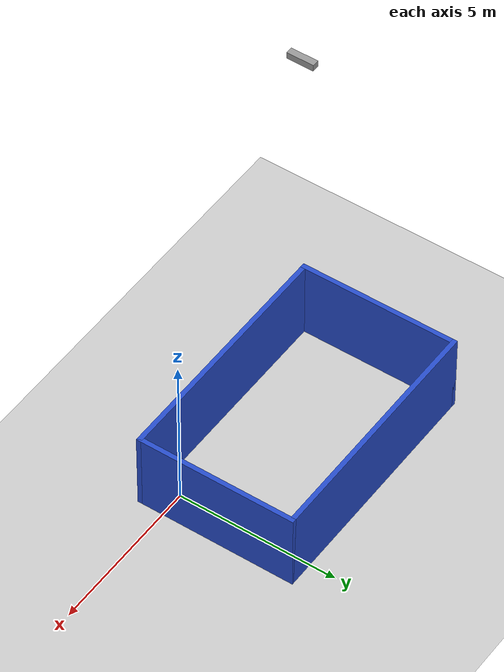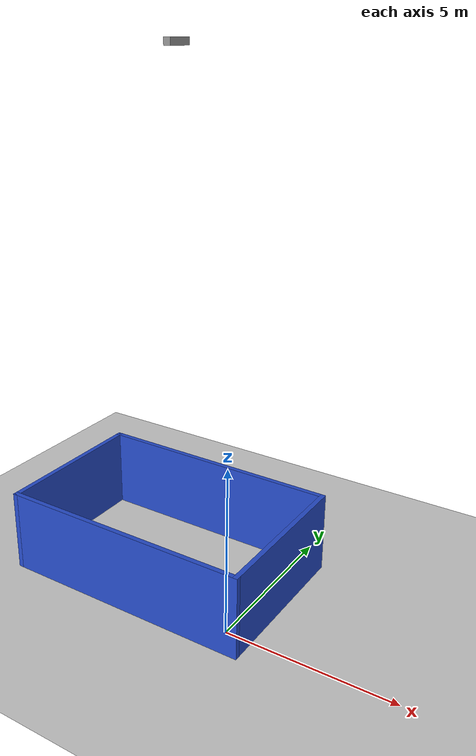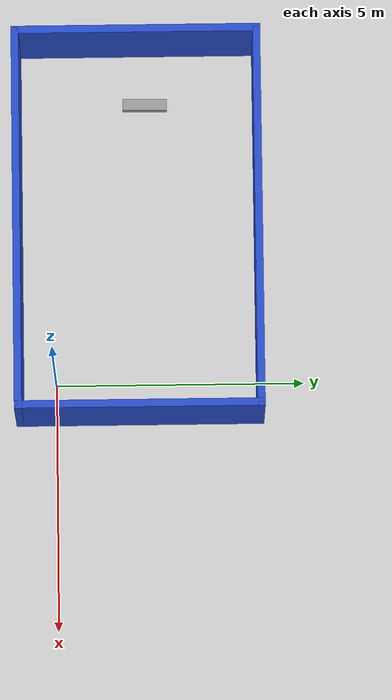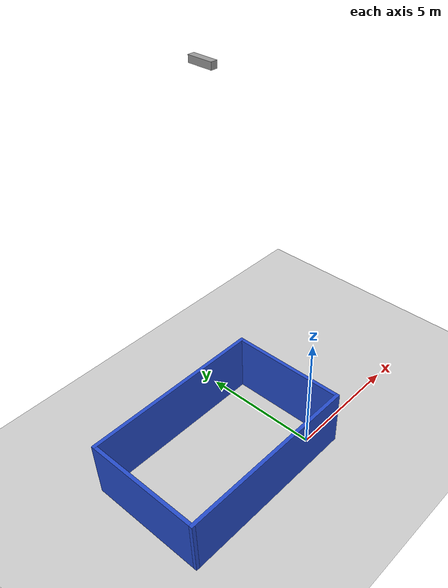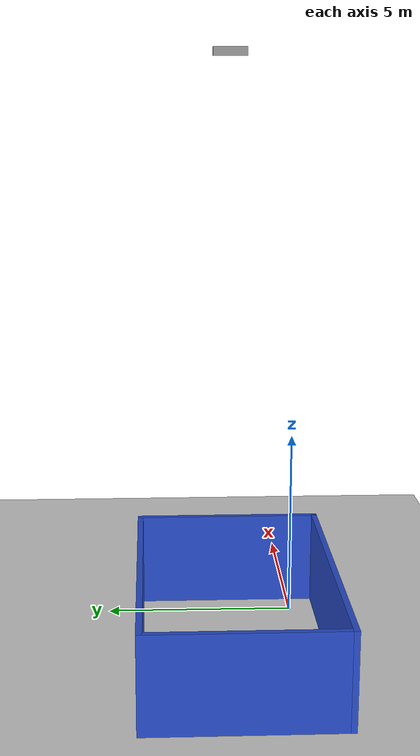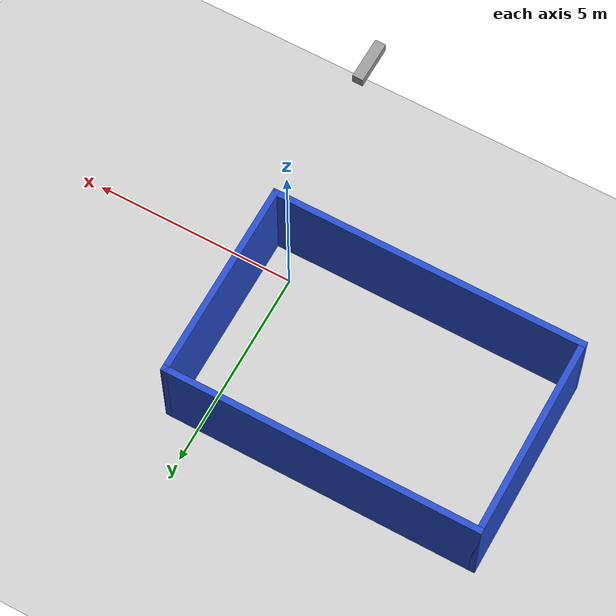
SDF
<sdf version="1.7">
 <world name="default">
  <light name="sun" type="directional">
   <pose>0 0 10 0 -0 0</pose>
   <diffuse>0.8 0.8 0.8 1</diffuse>
   <specular>0.2 0.2 0.2 1</specular>
   <attenuation>
    <range>1000</range>
    <constant>0.9</constant>
    <linear>0.01</linear>
    <quadratic>0.001</quadratic>
   </attenuation>
   <direction>-0.5 0.1 -0.9</direction>
   <spot><inner_angle>0</inner_angle><outer_angle>0</outer_angle><falloff>0</falloff></spot>
  </light>
  <model name="ground_plane">
   <static>1</static>
   <link name="link">
    <collision name="collision">
     <geometry><plane><normal>0 0 1</normal><size>100 100</size></plane></geometry>
     <surface><friction><ode><mu>100</mu><mu2>50</mu2></ode></friction></surface>
    </collision>
    <visual name="visual">
     <cast_shadows>0</cast_shadows>
     <geometry><plane><normal>0 0 1</normal><size>100 100</size></plane></geometry>
     <material>
      <script><uri>file://media/materials/scripts/gazebo.material</uri><name>Gazebo/Grey</name></script>
     </material>
    </visual>
   </link>
  </model>
  <gravity>0 0 -9.8</gravity>
  <magnetic_field>6e-06 2.3e-05 -4.2e-05</magnetic_field>
  <atmosphere type="adiabatic"/>
  <physics type="ode">
   <max_step_size>0.001</max_step_size>
   <real_time_factor>1</real_time_factor>
   <real_time_update_rate>1000</real_time_update_rate>
  </physics>
  <scene><ambient>0.4 0.4 0.4 1</ambient><background>0.7 0.7 0.7 1</background><shadows>1</shadows></scene>
  <spherical_coordinates>
   <surface_model>EARTH_WGS84</surface_model>
   <latitude_deg>0</latitude_deg>
   <longitude_deg>0</longitude_deg>
   <elevation>0</elevation>
   <heading_deg>0</heading_deg>
  </spherical_coordinates>
  <model name="the_wall">
   <pose>-3.06404 2.10367 0 0 -0 0</pose>
   <link name="Wall_0">
    <collision name="Wall_0_Collision">
     <geometry><box><size>7.75 0.15 2.5</size></box></geometry>
     <pose>0 0 1.25 0 -0 0</pose>
    </collision>
    <visual name="Wall_0_Visual">
     <pose>0 0 1.25 0 -0 0</pose>
     <geometry><box><size>7.75 0.15 2.5</size></box></geometry>
     <material>
      <script><uri>file://media/materials/scripts/gazebo.material</uri><name>Gazebo/Blue</name></script>
      <ambient>0 0 1</ambient>
     </material>
     <meta><layer>0</layer></meta>
    </visual>
    <pose>-0 2.0125 0 0 -0 0</pose>
   </link>
   <link name="Wall_1">
    <collision name="Wall_1_Collision">
     <geometry><box><size>5 0.15 2.5</size></box></geometry>
     <pose>0 0 1.25 0 -0 0</pose>
    </collision>
    <visual name="Wall_1_Visual">
     <pose>0 0 1.25 0 -0 0</pose>
     <geometry><box><size>5 0.15 2.5</size></box></geometry>
     <material>
      <script><uri>file://media/materials/scripts/gazebo.material</uri><name>Gazebo/Blue</name></script>
      <ambient>0 0 1</ambient>
     </material>
     <meta><layer>0</layer></meta>
    </visual>
    <pose>3.8 -0.4125 0 0 -0 -1.5708</pose>
   </link>
   <link name="Wall_2">
    <collision name="Wall_2_Collision">
     <geometry><box><size>7.75 0.15 2.5</size></box></geometry>
     <pose>0 0 1.25 0 -0 0</pose>
    </collision>
    <visual name="Wall_2_Visual">
     <pose>0 0 1.25 0 -0 0</pose>
     <geometry><box><size>7.75 0.15 2.5</size></box></geometry>
     <material>
      <script><uri>file://media/materials/scripts/gazebo.material</uri><name>Gazebo/Blue</name></script>
      <ambient>0 0 1</ambient>
     </material>
     <meta><layer>0</layer></meta>
    </visual>
    <pose>-0 -2.8375 0 0 -0 3.14159</pose>
   </link>
   <link name="Wall_3">
    <collision name="Wall_3_Collision">
     <geometry><box><size>5 0.15 2.5</size></box></geometry>
     <pose>0 0 1.25 0 -0 0</pose>
    </collision>
    <visual name="Wall_3_Visual">
     <pose>0 0 1.25 0 -0 0</pose>
     <geometry><box><size>5 0.15 2.5</size></box></geometry>
     <material>
      <script><uri>file://media/materials/scripts/gazebo.material</uri><name>Gazebo/Blue</name></script>
      <ambient>0 0 1</ambient>
     </material>
     <meta><layer>0</layer></meta>
    </visual>
    <pose>-3.8 -0.4125 0 0 -0 1.5708</pose>
   </link>
   <static>1</static>
  </model>
  <model name="camera_block">
   <link name="link_0">
    <inertial>
     <mass>1</mass>
     <inertia>
      <ixx>0.166667</ixx>
      <ixy>0</ixy>
      <ixz>0</ixz>
      <iyy>0.166667</iyy>
      <iyz>0</iyz>
      <izz>0.166667</izz>
     </inertia>
    </inertial>
    <pose>-1e-06 3e-06 -5e-06 0 -0 1.55915</pose>
    <visual name="visual">
     <geometry><box><size>0.8 0.2 0.2</size></box></geometry>
     <material>
      <lighting>1</lighting>
      <script><uri>file://media/materials/scripts/gazebo.material</uri><name>Gazebo/Grey</name></script>
      <shader type="pixel"><normal_map>__default__</normal_map></shader>
      <ambient>0.3 0.3 0.3 1</ambient>
      <diffuse>0.7 0.7 0.7 1</diffuse>
      <specular>0.01 0.01 0.01 1</specular>
      <emissive>0 0 0 1</emissive>
     </material>
    </visual>
    <collision name="collision">
     <geometry><box><size>0.8 0.2 0.2</size></box></geometry>
     <surface>
      <friction>
       <ode><mu>1</mu><mu2>1</mu2><fdir1>0 0 0</fdir1><slip1>0</slip1><slip2>0</slip2></ode>
       <torsional>
        <coefficient>1</coefficient>
        <patch_radius>0</patch_radius>
        <surface_radius>0</surface_radius>
        <use_patch_radius>1</use_patch_radius>
        <ode><slip>0</slip></ode>
       </torsional>
      </friction>
      <bounce><restitution_coefficient>0</restitution_coefficient><threshold>1e+06</threshold></bounce>
      <contact>
       <collide_without_contact>0</collide_without_contact>
       <collide_without_contact_bitmask>1</collide_without_contact_bitmask>
       <collide_bitmask>1</collide_bitmask>
       <ode>
        <soft_cfm>0</soft_cfm>
        <soft_erp>0.2</soft_erp>
        <kp>1e+13</kp>
        <kd>1</kd>
        <max_vel>0.01</max_vel>
        <min_depth>0</min_depth>
       </ode>
       <bullet>
        <split_impulse>1</split_impulse>
        <split_impulse_penetration_threshold>-0.01</split_impulse_penetration_threshold>
        <soft_cfm>0</soft_cfm>
        <soft_erp>0.2</soft_erp>
        <kp>1e+13</kp>
        <kd>1</kd>
       </bullet>
      </contact>
     </surface>
    </collision>
    <sensor name="upper_camera" type="camera">
     <pose>0 0 0 0 1.57 0</pose>
     <update_rate>30</update_rate>
     <visualize>1</visualize>
     <camera name="head">
      <horizontal_fov>1.39626</horizontal_fov>
      <image><width>1280</width><height>720</height><format>R8G8B8</format></image>
      <clip><near>0.02</near><far>300</far></clip>
      <noise><type>gaussian</type><mean>0</mean><stddev>0.007</stddev></noise>
     </camera>
     <plugin name="camera_controller" filename="libgazebo_ros_camera.so">
      <alwaysOn>1</alwaysOn>
      <updateRate>0.0</updateRate>
      <cameraName>rrbot/camera1</cameraName>
      <imageTopicName>image_raw</imageTopicName>
      <cameraInfoTopicName>camera_info</cameraInfoTopicName>
      <frameName>camera_link</frameName>
      <hackBaseline>0.07</hackBaseline>
      <distortionK1>0.0</distortionK1>
      <distortionK2>0.0</distortionK2>
      <distortionK3>0.0</distortionK3>
      <distortionT1>0.0</distortionT1>
      <distortionT2>0.0</distortionT2>
     </plugin>
    </sensor>
   </link>
   <static>1</static>
   <pose>-2.77204 1.90112 15 0 -0 0</pose>
  </model>
 </world>
</sdf>
